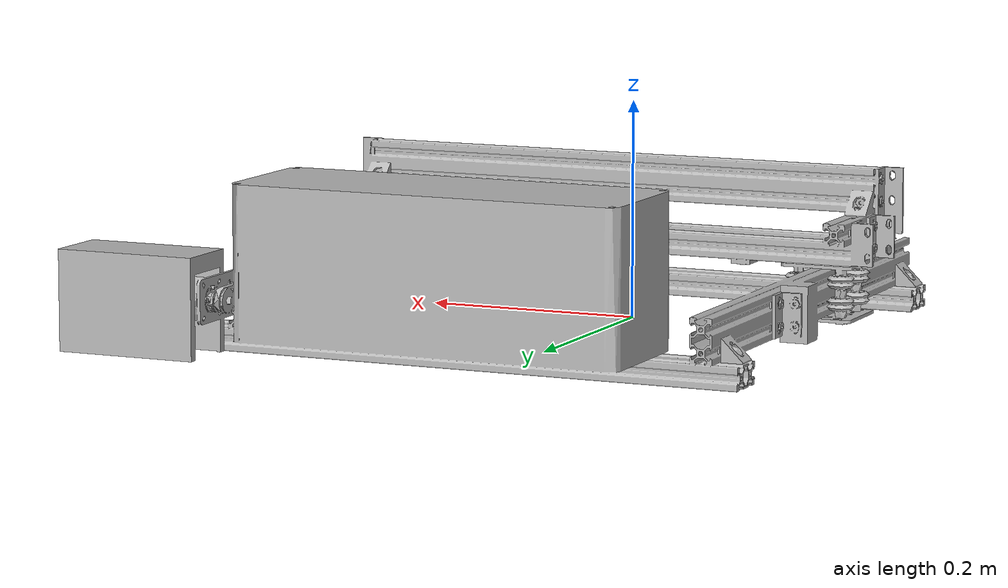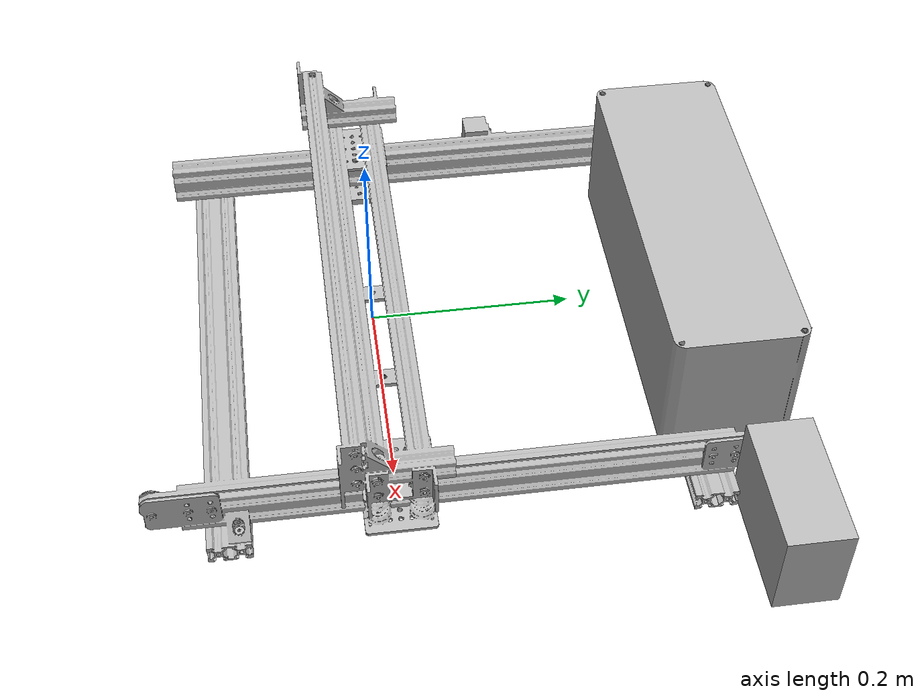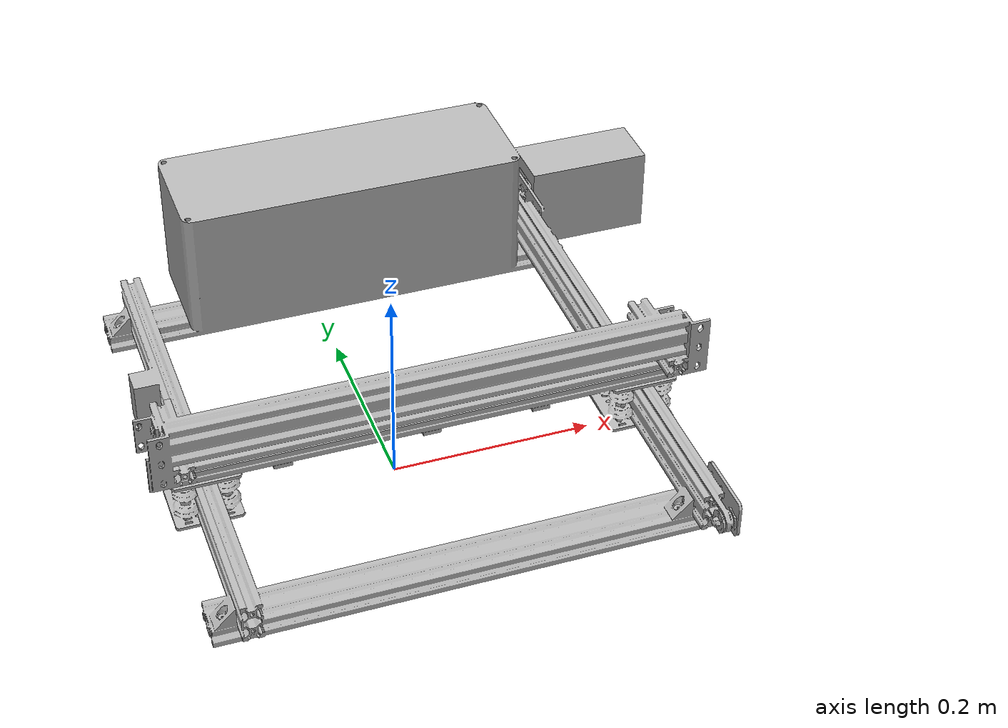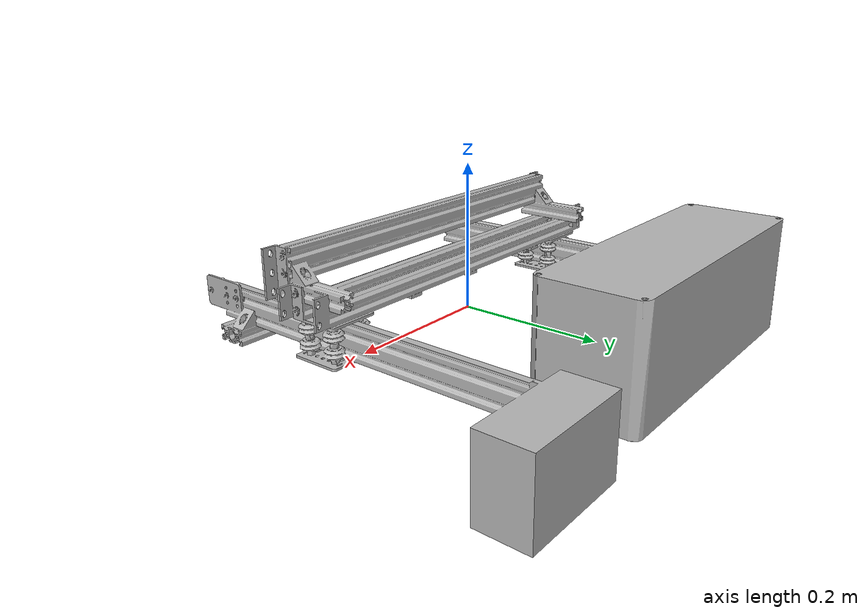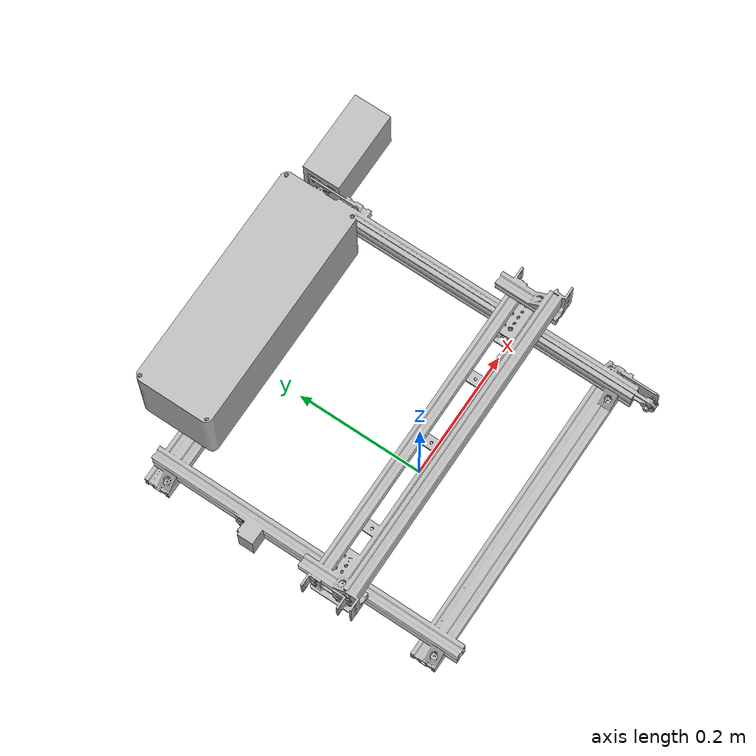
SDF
<sdf version='1.6'>
  <model name='foot_platform'>
    <link name='base_link'>
      <pose frame=''>0 0 0 0 -0 0</pose>
      <inertial>
        <pose frame=''>0.065061 0.237614 0.06685 0 -0 0</pose>
        <mass>6.20696</mass>
        <inertia>
          <ixx>0.16518</ixx>
          <ixy>0.0137729</ixy>
          <ixz>-0.00179536</ixz>
          <iyy>0.154343</iyy>
          <iyz>0.0178241</iyz>
          <izz>0.296485</izz>
        </inertia>
      </inertial>
      <collision name='base_link_collision'>
        <pose frame=''>0 0 0 0 -0 0</pose>
        <geometry>
          <mesh>
            <scale>1 1 1</scale>
            <uri>model://foot_platform_ros/model/meshes/stl/base_collision.stl</uri>
          </mesh>
        </geometry>
      </collision>
      <visual name='base_link_visual'>
        <pose frame=''>0 0 0 0 -0 0</pose>
        <geometry>
          <mesh>
            <scale>1 1 1</scale>
            <uri>model://foot_platform_ros/model/meshes/dae/base_visual.dae</uri>
          </mesh>
        </geometry>
      </visual>
    </link>
    <link name='y'>
      <pose frame=''>0 0 0 -1.5708 0 0</pose>
      <inertial>
        <pose frame=''>0.028171 -0.075855 -0.009694 0 -0 0</pose>
        <mass>1.86378</mass>
        <inertia>
          <ixx>0.00343968</ixx>
          <ixy>7.319e-05</ixy>
          <ixz>1.718e-05</ixz>
          <iyy>0.0682056</iyy>
          <iyz>0.00085107</iyz>
          <izz>0.0693822</izz>
        </inertia>
      </inertial>
      <collision name='y_collision'>
        <pose frame=''>0 0 0 0 -0 0</pose>
        <geometry>
          <mesh>
            <scale>1 1 1</scale>
            <uri>model://foot_platform_ros/model/meshes/stl/y_collision.stl</uri>
          </mesh>
        </geometry>
      </collision>
      <visual name='y_visual'>
        <pose frame=''>0 0 0 0 -0 0</pose>
        <geometry>
          <mesh>
            <scale>1 1 1</scale>
            <uri>model://foot_platform_ros/model/meshes/dae/y_visual.dae</uri>
          </mesh>
        </geometry>
      </visual>
    </link>
    <joint name='y_joint' type='prismatic'>
      <child>y</child>
      <parent>base_link</parent>
      <axis>
        <xyz>0 1 -4e-06</xyz>
        <limit>
          <lower>-0.09</lower>
          <upper>0.09</upper>
          <effort>23.5</effort>
          <velocity>10</velocity>
        </limit>
        <dynamics>
          <spring_reference>0</spring_reference>
          <spring_stiffness>0</spring_stiffness>
        </dynamics>
        <use_parent_model_frame>1</use_parent_model_frame>
      </axis>
    </joint>
  </model>
</sdf>
